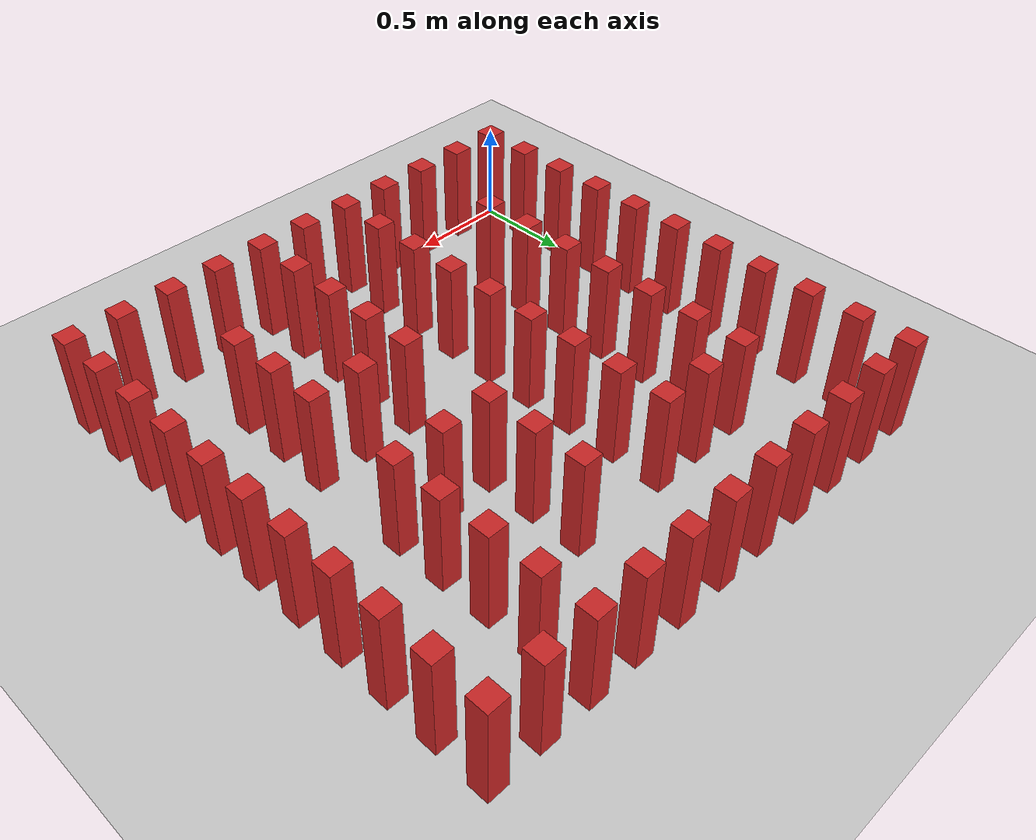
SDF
<sdf version="1.6">
 <world name="maze_random">
  <light name="sun" type="directional">
   <pose>0 0 10 0 0 0</pose>
   <diffuse>0.8 0.8 0.8 1</diffuse>
   <specular>0.2 0.2 0.2 1</specular>
   <attenuation>
    <range>1000</range>
    <constant>0.9</constant>
    <linear>0.01</linear>
    <quadratic>0.001</quadratic>
   </attenuation>
   <direction>-0.5 0.1 -0.9</direction>
  </light>
  <model name="ground_plane">
   <static>true</static>
   <link name="link">
    <collision name="collision">
     <geometry><plane><normal>0 0 1</normal><size>100 100</size></plane></geometry>
    </collision>
    <visual name="visual">
     <geometry><plane><normal>0 0 1</normal><size>100 100</size></plane></geometry>
     <material>
      <ambient>0.8 0.8 0.8 1</ambient>
      <diffuse>0.8 0.8 0.8 1</diffuse>
      <specular>0.8 0.8 0.8 1</specular>
     </material>
    </visual>
   </link>
  </model>
  <model name="maze_wall_0">
   <static>true</static>
   <link name="link">
    <collision name="collision"><geometry><box><size>0.1 0.1 0.5</size></box></geometry></collision>
    <visual name="visual">
     <geometry><box><size>0.1 0.1 0.5</size></box></geometry>
     <material>
      <script><uri>file://media/materials/scripts/gazebo.material</uri><name>Gazebo/Red</name></script>
     </material>
    </visual>
   </link>
   <pose>0.0 0.0 0.25 0 0 0</pose>
  </model>
  <model name="maze_wall_1">
   <static>true</static>
   <link name="link">
    <collision name="collision"><geometry><box><size>0.1 0.1 0.5</size></box></geometry></collision>
    <visual name="visual">
     <geometry><box><size>0.1 0.1 0.5</size></box></geometry>
     <material>
      <script><uri>file://media/materials/scripts/gazebo.material</uri><name>Gazebo/Red</name></script>
     </material>
    </visual>
   </link>
   <pose>0.25 0.0 0.25 0 0 0</pose>
  </model>
  <model name="maze_wall_2">
   <static>true</static>
   <link name="link">
    <collision name="collision"><geometry><box><size>0.1 0.1 0.5</size></box></geometry></collision>
    <visual name="visual">
     <geometry><box><size>0.1 0.1 0.5</size></box></geometry>
     <material>
      <script><uri>file://media/materials/scripts/gazebo.material</uri><name>Gazebo/Red</name></script>
     </material>
    </visual>
   </link>
   <pose>0.5 0.0 0.25 0 0 0</pose>
  </model>
  <model name="maze_wall_3">
   <static>true</static>
   <link name="link">
    <collision name="collision"><geometry><box><size>0.1 0.1 0.5</size></box></geometry></collision>
    <visual name="visual">
     <geometry><box><size>0.1 0.1 0.5</size></box></geometry>
     <material>
      <script><uri>file://media/materials/scripts/gazebo.material</uri><name>Gazebo/Red</name></script>
     </material>
    </visual>
   </link>
   <pose>0.75 0.0 0.25 0 0 0</pose>
  </model>
  <model name="maze_wall_4">
   <static>true</static>
   <link name="link">
    <collision name="collision"><geometry><box><size>0.1 0.1 0.5</size></box></geometry></collision>
    <visual name="visual">
     <geometry><box><size>0.1 0.1 0.5</size></box></geometry>
     <material>
      <script><uri>file://media/materials/scripts/gazebo.material</uri><name>Gazebo/Red</name></script>
     </material>
    </visual>
   </link>
   <pose>1.0 0.0 0.25 0 0 0</pose>
  </model>
  <model name="maze_wall_5">
   <static>true</static>
   <link name="link">
    <collision name="collision"><geometry><box><size>0.1 0.1 0.5</size></box></geometry></collision>
    <visual name="visual">
     <geometry><box><size>0.1 0.1 0.5</size></box></geometry>
     <material>
      <script><uri>file://media/materials/scripts/gazebo.material</uri><name>Gazebo/Red</name></script>
     </material>
    </visual>
   </link>
   <pose>1.25 0.0 0.25 0 0 0</pose>
  </model>
  <model name="maze_wall_6">
   <static>true</static>
   <link name="link">
    <collision name="collision"><geometry><box><size>0.1 0.1 0.5</size></box></geometry></collision>
    <visual name="visual">
     <geometry><box><size>0.1 0.1 0.5</size></box></geometry>
     <material>
      <script><uri>file://media/materials/scripts/gazebo.material</uri><name>Gazebo/Red</name></script>
     </material>
    </visual>
   </link>
   <pose>1.5 0.0 0.25 0 0 0</pose>
  </model>
  <model name="maze_wall_7">
   <static>true</static>
   <link name="link">
    <collision name="collision"><geometry><box><size>0.1 0.1 0.5</size></box></geometry></collision>
    <visual name="visual">
     <geometry><box><size>0.1 0.1 0.5</size></box></geometry>
     <material>
      <script><uri>file://media/materials/scripts/gazebo.material</uri><name>Gazebo/Red</name></script>
     </material>
    </visual>
   </link>
   <pose>1.75 0.0 0.25 0 0 0</pose>
  </model>
  <model name="maze_wall_8">
   <static>true</static>
   <link name="link">
    <collision name="collision"><geometry><box><size>0.1 0.1 0.5</size></box></geometry></collision>
    <visual name="visual">
     <geometry><box><size>0.1 0.1 0.5</size></box></geometry>
     <material>
      <script><uri>file://media/materials/scripts/gazebo.material</uri><name>Gazebo/Red</name></script>
     </material>
    </visual>
   </link>
   <pose>2.0 0.0 0.25 0 0 0</pose>
  </model>
  <model name="maze_wall_9">
   <static>true</static>
   <link name="link">
    <collision name="collision"><geometry><box><size>0.1 0.1 0.5</size></box></geometry></collision>
    <visual name="visual">
     <geometry><box><size>0.1 0.1 0.5</size></box></geometry>
     <material>
      <script><uri>file://media/materials/scripts/gazebo.material</uri><name>Gazebo/Red</name></script>
     </material>
    </visual>
   </link>
   <pose>2.25 0.0 0.25 0 0 0</pose>
  </model>
  <model name="maze_wall_10">
   <static>true</static>
   <link name="link">
    <collision name="collision"><geometry><box><size>0.1 0.1 0.5</size></box></geometry></collision>
    <visual name="visual">
     <geometry><box><size>0.1 0.1 0.5</size></box></geometry>
     <material>
      <script><uri>file://media/materials/scripts/gazebo.material</uri><name>Gazebo/Red</name></script>
     </material>
    </visual>
   </link>
   <pose>2.5 0.0 0.25 0 0 0</pose>
  </model>
  <model name="maze_wall_11">
   <static>true</static>
   <link name="link">
    <collision name="collision"><geometry><box><size>0.1 0.1 0.5</size></box></geometry></collision>
    <visual name="visual">
     <geometry><box><size>0.1 0.1 0.5</size></box></geometry>
     <material>
      <script><uri>file://media/materials/scripts/gazebo.material</uri><name>Gazebo/Red</name></script>
     </material>
    </visual>
   </link>
   <pose>0.0 0.25 0.25 0 0 0</pose>
  </model>
  <model name="maze_wall_12">
   <static>true</static>
   <link name="link">
    <collision name="collision"><geometry><box><size>0.1 0.1 0.5</size></box></geometry></collision>
    <visual name="visual">
     <geometry><box><size>0.1 0.1 0.5</size></box></geometry>
     <material>
      <script><uri>file://media/materials/scripts/gazebo.material</uri><name>Gazebo/Red</name></script>
     </material>
    </visual>
   </link>
   <pose>1.0 0.25 0.25 0 0 0</pose>
  </model>
  <model name="maze_wall_13">
   <static>true</static>
   <link name="link">
    <collision name="collision"><geometry><box><size>0.1 0.1 0.5</size></box></geometry></collision>
    <visual name="visual">
     <geometry><box><size>0.1 0.1 0.5</size></box></geometry>
     <material>
      <script><uri>file://media/materials/scripts/gazebo.material</uri><name>Gazebo/Red</name></script>
     </material>
    </visual>
   </link>
   <pose>1.5 0.25 0.25 0 0 0</pose>
  </model>
  <model name="maze_wall_14">
   <static>true</static>
   <link name="link">
    <collision name="collision"><geometry><box><size>0.1 0.1 0.5</size></box></geometry></collision>
    <visual name="visual">
     <geometry><box><size>0.1 0.1 0.5</size></box></geometry>
     <material>
      <script><uri>file://media/materials/scripts/gazebo.material</uri><name>Gazebo/Red</name></script>
     </material>
    </visual>
   </link>
   <pose>2.5 0.25 0.25 0 0 0</pose>
  </model>
  <model name="maze_wall_15">
   <static>true</static>
   <link name="link">
    <collision name="collision"><geometry><box><size>0.1 0.1 0.5</size></box></geometry></collision>
    <visual name="visual">
     <geometry><box><size>0.1 0.1 0.5</size></box></geometry>
     <material>
      <script><uri>file://media/materials/scripts/gazebo.material</uri><name>Gazebo/Red</name></script>
     </material>
    </visual>
   </link>
   <pose>0.0 0.5 0.25 0 0 0</pose>
  </model>
  <model name="maze_wall_16">
   <static>true</static>
   <link name="link">
    <collision name="collision"><geometry><box><size>0.1 0.1 0.5</size></box></geometry></collision>
    <visual name="visual">
     <geometry><box><size>0.1 0.1 0.5</size></box></geometry>
     <material>
      <script><uri>file://media/materials/scripts/gazebo.material</uri><name>Gazebo/Red</name></script>
     </material>
    </visual>
   </link>
   <pose>0.5 0.5 0.25 0 0 0</pose>
  </model>
  <model name="maze_wall_17">
   <static>true</static>
   <link name="link">
    <collision name="collision"><geometry><box><size>0.1 0.1 0.5</size></box></geometry></collision>
    <visual name="visual">
     <geometry><box><size>0.1 0.1 0.5</size></box></geometry>
     <material>
      <script><uri>file://media/materials/scripts/gazebo.material</uri><name>Gazebo/Red</name></script>
     </material>
    </visual>
   </link>
   <pose>1.0 0.5 0.25 0 0 0</pose>
  </model>
  <model name="maze_wall_18">
   <static>true</static>
   <link name="link">
    <collision name="collision"><geometry><box><size>0.1 0.1 0.5</size></box></geometry></collision>
    <visual name="visual">
     <geometry><box><size>0.1 0.1 0.5</size></box></geometry>
     <material>
      <script><uri>file://media/materials/scripts/gazebo.material</uri><name>Gazebo/Red</name></script>
     </material>
    </visual>
   </link>
   <pose>1.5 0.5 0.25 0 0 0</pose>
  </model>
  <model name="maze_wall_19">
   <static>true</static>
   <link name="link">
    <collision name="collision"><geometry><box><size>0.1 0.1 0.5</size></box></geometry></collision>
    <visual name="visual">
     <geometry><box><size>0.1 0.1 0.5</size></box></geometry>
     <material>
      <script><uri>file://media/materials/scripts/gazebo.material</uri><name>Gazebo/Red</name></script>
     </material>
    </visual>
   </link>
   <pose>2.0 0.5 0.25 0 0 0</pose>
  </model>
  <model name="maze_wall_20">
   <static>true</static>
   <link name="link">
    <collision name="collision"><geometry><box><size>0.1 0.1 0.5</size></box></geometry></collision>
    <visual name="visual">
     <geometry><box><size>0.1 0.1 0.5</size></box></geometry>
     <material>
      <script><uri>file://media/materials/scripts/gazebo.material</uri><name>Gazebo/Red</name></script>
     </material>
    </visual>
   </link>
   <pose>2.5 0.5 0.25 0 0 0</pose>
  </model>
  <model name="maze_wall_21">
   <static>true</static>
   <link name="link">
    <collision name="collision"><geometry><box><size>0.1 0.1 0.5</size></box></geometry></collision>
    <visual name="visual">
     <geometry><box><size>0.1 0.1 0.5</size></box></geometry>
     <material>
      <script><uri>file://media/materials/scripts/gazebo.material</uri><name>Gazebo/Red</name></script>
     </material>
    </visual>
   </link>
   <pose>0.0 0.75 0.25 0 0 0</pose>
  </model>
  <model name="maze_wall_22">
   <static>true</static>
   <link name="link">
    <collision name="collision"><geometry><box><size>0.1 0.1 0.5</size></box></geometry></collision>
    <visual name="visual">
     <geometry><box><size>0.1 0.1 0.5</size></box></geometry>
     <material>
      <script><uri>file://media/materials/scripts/gazebo.material</uri><name>Gazebo/Red</name></script>
     </material>
    </visual>
   </link>
   <pose>0.5 0.75 0.25 0 0 0</pose>
  </model>
  <model name="maze_wall_23">
   <static>true</static>
   <link name="link">
    <collision name="collision"><geometry><box><size>0.1 0.1 0.5</size></box></geometry></collision>
    <visual name="visual">
     <geometry><box><size>0.1 0.1 0.5</size></box></geometry>
     <material>
      <script><uri>file://media/materials/scripts/gazebo.material</uri><name>Gazebo/Red</name></script>
     </material>
    </visual>
   </link>
   <pose>1.0 0.75 0.25 0 0 0</pose>
  </model>
  <model name="maze_wall_24">
   <static>true</static>
   <link name="link">
    <collision name="collision"><geometry><box><size>0.1 0.1 0.5</size></box></geometry></collision>
    <visual name="visual">
     <geometry><box><size>0.1 0.1 0.5</size></box></geometry>
     <material>
      <script><uri>file://media/materials/scripts/gazebo.material</uri><name>Gazebo/Red</name></script>
     </material>
    </visual>
   </link>
   <pose>1.5 0.75 0.25 0 0 0</pose>
  </model>
  <model name="maze_wall_25">
   <static>true</static>
   <link name="link">
    <collision name="collision"><geometry><box><size>0.1 0.1 0.5</size></box></geometry></collision>
    <visual name="visual">
     <geometry><box><size>0.1 0.1 0.5</size></box></geometry>
     <material>
      <script><uri>file://media/materials/scripts/gazebo.material</uri><name>Gazebo/Red</name></script>
     </material>
    </visual>
   </link>
   <pose>2.0 0.75 0.25 0 0 0</pose>
  </model>
  <model name="maze_wall_26">
   <static>true</static>
   <link name="link">
    <collision name="collision"><geometry><box><size>0.1 0.1 0.5</size></box></geometry></collision>
    <visual name="visual">
     <geometry><box><size>0.1 0.1 0.5</size></box></geometry>
     <material>
      <script><uri>file://media/materials/scripts/gazebo.material</uri><name>Gazebo/Red</name></script>
     </material>
    </visual>
   </link>
   <pose>2.5 0.75 0.25 0 0 0</pose>
  </model>
  <model name="maze_wall_27">
   <static>true</static>
   <link name="link">
    <collision name="collision"><geometry><box><size>0.1 0.1 0.5</size></box></geometry></collision>
    <visual name="visual">
     <geometry><box><size>0.1 0.1 0.5</size></box></geometry>
     <material>
      <script><uri>file://media/materials/scripts/gazebo.material</uri><name>Gazebo/Red</name></script>
     </material>
    </visual>
   </link>
   <pose>0.0 1.0 0.25 0 0 0</pose>
  </model>
  <model name="maze_wall_28">
   <static>true</static>
   <link name="link">
    <collision name="collision"><geometry><box><size>0.1 0.1 0.5</size></box></geometry></collision>
    <visual name="visual">
     <geometry><box><size>0.1 0.1 0.5</size></box></geometry>
     <material>
      <script><uri>file://media/materials/scripts/gazebo.material</uri><name>Gazebo/Red</name></script>
     </material>
    </visual>
   </link>
   <pose>0.5 1.0 0.25 0 0 0</pose>
  </model>
  <model name="maze_wall_29">
   <static>true</static>
   <link name="link">
    <collision name="collision"><geometry><box><size>0.1 0.1 0.5</size></box></geometry></collision>
    <visual name="visual">
     <geometry><box><size>0.1 0.1 0.5</size></box></geometry>
     <material>
      <script><uri>file://media/materials/scripts/gazebo.material</uri><name>Gazebo/Red</name></script>
     </material>
    </visual>
   </link>
   <pose>1.0 1.0 0.25 0 0 0</pose>
  </model>
  <model name="maze_wall_30">
   <static>true</static>
   <link name="link">
    <collision name="collision"><geometry><box><size>0.1 0.1 0.5</size></box></geometry></collision>
    <visual name="visual">
     <geometry><box><size>0.1 0.1 0.5</size></box></geometry>
     <material>
      <script><uri>file://media/materials/scripts/gazebo.material</uri><name>Gazebo/Red</name></script>
     </material>
    </visual>
   </link>
   <pose>1.5 1.0 0.25 0 0 0</pose>
  </model>
  <model name="maze_wall_31">
   <static>true</static>
   <link name="link">
    <collision name="collision"><geometry><box><size>0.1 0.1 0.5</size></box></geometry></collision>
    <visual name="visual">
     <geometry><box><size>0.1 0.1 0.5</size></box></geometry>
     <material>
      <script><uri>file://media/materials/scripts/gazebo.material</uri><name>Gazebo/Red</name></script>
     </material>
    </visual>
   </link>
   <pose>1.75 1.0 0.25 0 0 0</pose>
  </model>
  <model name="maze_wall_32">
   <static>true</static>
   <link name="link">
    <collision name="collision"><geometry><box><size>0.1 0.1 0.5</size></box></geometry></collision>
    <visual name="visual">
     <geometry><box><size>0.1 0.1 0.5</size></box></geometry>
     <material>
      <script><uri>file://media/materials/scripts/gazebo.material</uri><name>Gazebo/Red</name></script>
     </material>
    </visual>
   </link>
   <pose>2.0 1.0 0.25 0 0 0</pose>
  </model>
  <model name="maze_wall_33">
   <static>true</static>
   <link name="link">
    <collision name="collision"><geometry><box><size>0.1 0.1 0.5</size></box></geometry></collision>
    <visual name="visual">
     <geometry><box><size>0.1 0.1 0.5</size></box></geometry>
     <material>
      <script><uri>file://media/materials/scripts/gazebo.material</uri><name>Gazebo/Red</name></script>
     </material>
    </visual>
   </link>
   <pose>2.5 1.0 0.25 0 0 0</pose>
  </model>
  <model name="maze_wall_34">
   <static>true</static>
   <link name="link">
    <collision name="collision"><geometry><box><size>0.1 0.1 0.5</size></box></geometry></collision>
    <visual name="visual">
     <geometry><box><size>0.1 0.1 0.5</size></box></geometry>
     <material>
      <script><uri>file://media/materials/scripts/gazebo.material</uri><name>Gazebo/Red</name></script>
     </material>
    </visual>
   </link>
   <pose>0.0 1.25 0.25 0 0 0</pose>
  </model>
  <model name="maze_wall_35">
   <static>true</static>
   <link name="link">
    <collision name="collision"><geometry><box><size>0.1 0.1 0.5</size></box></geometry></collision>
    <visual name="visual">
     <geometry><box><size>0.1 0.1 0.5</size></box></geometry>
     <material>
      <script><uri>file://media/materials/scripts/gazebo.material</uri><name>Gazebo/Red</name></script>
     </material>
    </visual>
   </link>
   <pose>0.5 1.25 0.25 0 0 0</pose>
  </model>
  <model name="maze_wall_36">
   <static>true</static>
   <link name="link">
    <collision name="collision"><geometry><box><size>0.1 0.1 0.5</size></box></geometry></collision>
    <visual name="visual">
     <geometry><box><size>0.1 0.1 0.5</size></box></geometry>
     <material>
      <script><uri>file://media/materials/scripts/gazebo.material</uri><name>Gazebo/Red</name></script>
     </material>
    </visual>
   </link>
   <pose>1.0 1.25 0.25 0 0 0</pose>
  </model>
  <model name="maze_wall_37">
   <static>true</static>
   <link name="link">
    <collision name="collision"><geometry><box><size>0.1 0.1 0.5</size></box></geometry></collision>
    <visual name="visual">
     <geometry><box><size>0.1 0.1 0.5</size></box></geometry>
     <material>
      <script><uri>file://media/materials/scripts/gazebo.material</uri><name>Gazebo/Red</name></script>
     </material>
    </visual>
   </link>
   <pose>2.5 1.25 0.25 0 0 0</pose>
  </model>
  <model name="maze_wall_38">
   <static>true</static>
   <link name="link">
    <collision name="collision"><geometry><box><size>0.1 0.1 0.5</size></box></geometry></collision>
    <visual name="visual">
     <geometry><box><size>0.1 0.1 0.5</size></box></geometry>
     <material>
      <script><uri>file://media/materials/scripts/gazebo.material</uri><name>Gazebo/Red</name></script>
     </material>
    </visual>
   </link>
   <pose>0.0 1.5 0.25 0 0 0</pose>
  </model>
  <model name="maze_wall_39">
   <static>true</static>
   <link name="link">
    <collision name="collision"><geometry><box><size>0.1 0.1 0.5</size></box></geometry></collision>
    <visual name="visual">
     <geometry><box><size>0.1 0.1 0.5</size></box></geometry>
     <material>
      <script><uri>file://media/materials/scripts/gazebo.material</uri><name>Gazebo/Red</name></script>
     </material>
    </visual>
   </link>
   <pose>0.5 1.5 0.25 0 0 0</pose>
  </model>
  <model name="maze_wall_40">
   <static>true</static>
   <link name="link">
    <collision name="collision"><geometry><box><size>0.1 0.1 0.5</size></box></geometry></collision>
    <visual name="visual">
     <geometry><box><size>0.1 0.1 0.5</size></box></geometry>
     <material>
      <script><uri>file://media/materials/scripts/gazebo.material</uri><name>Gazebo/Red</name></script>
     </material>
    </visual>
   </link>
   <pose>1.0 1.5 0.25 0 0 0</pose>
  </model>
  <model name="maze_wall_41">
   <static>true</static>
   <link name="link">
    <collision name="collision"><geometry><box><size>0.1 0.1 0.5</size></box></geometry></collision>
    <visual name="visual">
     <geometry><box><size>0.1 0.1 0.5</size></box></geometry>
     <material>
      <script><uri>file://media/materials/scripts/gazebo.material</uri><name>Gazebo/Red</name></script>
     </material>
    </visual>
   </link>
   <pose>1.5 1.5 0.25 0 0 0</pose>
  </model>
  <model name="maze_wall_42">
   <static>true</static>
   <link name="link">
    <collision name="collision"><geometry><box><size>0.1 0.1 0.5</size></box></geometry></collision>
    <visual name="visual">
     <geometry><box><size>0.1 0.1 0.5</size></box></geometry>
     <material>
      <script><uri>file://media/materials/scripts/gazebo.material</uri><name>Gazebo/Red</name></script>
     </material>
    </visual>
   </link>
   <pose>1.75 1.5 0.25 0 0 0</pose>
  </model>
  <model name="maze_wall_43">
   <static>true</static>
   <link name="link">
    <collision name="collision"><geometry><box><size>0.1 0.1 0.5</size></box></geometry></collision>
    <visual name="visual">
     <geometry><box><size>0.1 0.1 0.5</size></box></geometry>
     <material>
      <script><uri>file://media/materials/scripts/gazebo.material</uri><name>Gazebo/Red</name></script>
     </material>
    </visual>
   </link>
   <pose>2.0 1.5 0.25 0 0 0</pose>
  </model>
  <model name="maze_wall_44">
   <static>true</static>
   <link name="link">
    <collision name="collision"><geometry><box><size>0.1 0.1 0.5</size></box></geometry></collision>
    <visual name="visual">
     <geometry><box><size>0.1 0.1 0.5</size></box></geometry>
     <material>
      <script><uri>file://media/materials/scripts/gazebo.material</uri><name>Gazebo/Red</name></script>
     </material>
    </visual>
   </link>
   <pose>2.5 1.5 0.25 0 0 0</pose>
  </model>
  <model name="maze_wall_45">
   <static>true</static>
   <link name="link">
    <collision name="collision"><geometry><box><size>0.1 0.1 0.5</size></box></geometry></collision>
    <visual name="visual">
     <geometry><box><size>0.1 0.1 0.5</size></box></geometry>
     <material>
      <script><uri>file://media/materials/scripts/gazebo.material</uri><name>Gazebo/Red</name></script>
     </material>
    </visual>
   </link>
   <pose>0.0 1.75 0.25 0 0 0</pose>
  </model>
  <model name="maze_wall_46">
   <static>true</static>
   <link name="link">
    <collision name="collision"><geometry><box><size>0.1 0.1 0.5</size></box></geometry></collision>
    <visual name="visual">
     <geometry><box><size>0.1 0.1 0.5</size></box></geometry>
     <material>
      <script><uri>file://media/materials/scripts/gazebo.material</uri><name>Gazebo/Red</name></script>
     </material>
    </visual>
   </link>
   <pose>0.5 1.75 0.25 0 0 0</pose>
  </model>
  <model name="maze_wall_47">
   <static>true</static>
   <link name="link">
    <collision name="collision"><geometry><box><size>0.1 0.1 0.5</size></box></geometry></collision>
    <visual name="visual">
     <geometry><box><size>0.1 0.1 0.5</size></box></geometry>
     <material>
      <script><uri>file://media/materials/scripts/gazebo.material</uri><name>Gazebo/Red</name></script>
     </material>
    </visual>
   </link>
   <pose>1.0 1.75 0.25 0 0 0</pose>
  </model>
  <model name="maze_wall_48">
   <static>true</static>
   <link name="link">
    <collision name="collision"><geometry><box><size>0.1 0.1 0.5</size></box></geometry></collision>
    <visual name="visual">
     <geometry><box><size>0.1 0.1 0.5</size></box></geometry>
     <material>
      <script><uri>file://media/materials/scripts/gazebo.material</uri><name>Gazebo/Red</name></script>
     </material>
    </visual>
   </link>
   <pose>1.5 1.75 0.25 0 0 0</pose>
  </model>
  <model name="maze_wall_49">
   <static>true</static>
   <link name="link">
    <collision name="collision"><geometry><box><size>0.1 0.1 0.5</size></box></geometry></collision>
    <visual name="visual">
     <geometry><box><size>0.1 0.1 0.5</size></box></geometry>
     <material>
      <script><uri>file://media/materials/scripts/gazebo.material</uri><name>Gazebo/Red</name></script>
     </material>
    </visual>
   </link>
   <pose>2.0 1.75 0.25 0 0 0</pose>
  </model>
  <model name="maze_wall_50">
   <static>true</static>
   <link name="link">
    <collision name="collision"><geometry><box><size>0.1 0.1 0.5</size></box></geometry></collision>
    <visual name="visual">
     <geometry><box><size>0.1 0.1 0.5</size></box></geometry>
     <material>
      <script><uri>file://media/materials/scripts/gazebo.material</uri><name>Gazebo/Red</name></script>
     </material>
    </visual>
   </link>
   <pose>2.5 1.75 0.25 0 0 0</pose>
  </model>
  <model name="maze_wall_51">
   <static>true</static>
   <link name="link">
    <collision name="collision"><geometry><box><size>0.1 0.1 0.5</size></box></geometry></collision>
    <visual name="visual">
     <geometry><box><size>0.1 0.1 0.5</size></box></geometry>
     <material>
      <script><uri>file://media/materials/scripts/gazebo.material</uri><name>Gazebo/Red</name></script>
     </material>
    </visual>
   </link>
   <pose>0.0 2.0 0.25 0 0 0</pose>
  </model>
  <model name="maze_wall_52">
   <static>true</static>
   <link name="link">
    <collision name="collision"><geometry><box><size>0.1 0.1 0.5</size></box></geometry></collision>
    <visual name="visual">
     <geometry><box><size>0.1 0.1 0.5</size></box></geometry>
     <material>
      <script><uri>file://media/materials/scripts/gazebo.material</uri><name>Gazebo/Red</name></script>
     </material>
    </visual>
   </link>
   <pose>0.5 2.0 0.25 0 0 0</pose>
  </model>
  <model name="maze_wall_53">
   <static>true</static>
   <link name="link">
    <collision name="collision"><geometry><box><size>0.1 0.1 0.5</size></box></geometry></collision>
    <visual name="visual">
     <geometry><box><size>0.1 0.1 0.5</size></box></geometry>
     <material>
      <script><uri>file://media/materials/scripts/gazebo.material</uri><name>Gazebo/Red</name></script>
     </material>
    </visual>
   </link>
   <pose>0.75 2.0 0.25 0 0 0</pose>
  </model>
  <model name="maze_wall_54">
   <static>true</static>
   <link name="link">
    <collision name="collision"><geometry><box><size>0.1 0.1 0.5</size></box></geometry></collision>
    <visual name="visual">
     <geometry><box><size>0.1 0.1 0.5</size></box></geometry>
     <material>
      <script><uri>file://media/materials/scripts/gazebo.material</uri><name>Gazebo/Red</name></script>
     </material>
    </visual>
   </link>
   <pose>1.0 2.0 0.25 0 0 0</pose>
  </model>
  <model name="maze_wall_55">
   <static>true</static>
   <link name="link">
    <collision name="collision"><geometry><box><size>0.1 0.1 0.5</size></box></geometry></collision>
    <visual name="visual">
     <geometry><box><size>0.1 0.1 0.5</size></box></geometry>
     <material>
      <script><uri>file://media/materials/scripts/gazebo.material</uri><name>Gazebo/Red</name></script>
     </material>
    </visual>
   </link>
   <pose>1.5 2.0 0.25 0 0 0</pose>
  </model>
  <model name="maze_wall_56">
   <static>true</static>
   <link name="link">
    <collision name="collision"><geometry><box><size>0.1 0.1 0.5</size></box></geometry></collision>
    <visual name="visual">
     <geometry><box><size>0.1 0.1 0.5</size></box></geometry>
     <material>
      <script><uri>file://media/materials/scripts/gazebo.material</uri><name>Gazebo/Red</name></script>
     </material>
    </visual>
   </link>
   <pose>2.0 2.0 0.25 0 0 0</pose>
  </model>
  <model name="maze_wall_57">
   <static>true</static>
   <link name="link">
    <collision name="collision"><geometry><box><size>0.1 0.1 0.5</size></box></geometry></collision>
    <visual name="visual">
     <geometry><box><size>0.1 0.1 0.5</size></box></geometry>
     <material>
      <script><uri>file://media/materials/scripts/gazebo.material</uri><name>Gazebo/Red</name></script>
     </material>
    </visual>
   </link>
   <pose>2.5 2.0 0.25 0 0 0</pose>
  </model>
  <model name="maze_wall_58">
   <static>true</static>
   <link name="link">
    <collision name="collision"><geometry><box><size>0.1 0.1 0.5</size></box></geometry></collision>
    <visual name="visual">
     <geometry><box><size>0.1 0.1 0.5</size></box></geometry>
     <material>
      <script><uri>file://media/materials/scripts/gazebo.material</uri><name>Gazebo/Red</name></script>
     </material>
    </visual>
   </link>
   <pose>0.0 2.25 0.25 0 0 0</pose>
  </model>
  <model name="maze_wall_59">
   <static>true</static>
   <link name="link">
    <collision name="collision"><geometry><box><size>0.1 0.1 0.5</size></box></geometry></collision>
    <visual name="visual">
     <geometry><box><size>0.1 0.1 0.5</size></box></geometry>
     <material>
      <script><uri>file://media/materials/scripts/gazebo.material</uri><name>Gazebo/Red</name></script>
     </material>
    </visual>
   </link>
   <pose>2.0 2.25 0.25 0 0 0</pose>
  </model>
  <model name="maze_wall_60">
   <static>true</static>
   <link name="link">
    <collision name="collision"><geometry><box><size>0.1 0.1 0.5</size></box></geometry></collision>
    <visual name="visual">
     <geometry><box><size>0.1 0.1 0.5</size></box></geometry>
     <material>
      <script><uri>file://media/materials/scripts/gazebo.material</uri><name>Gazebo/Red</name></script>
     </material>
    </visual>
   </link>
   <pose>2.5 2.25 0.25 0 0 0</pose>
  </model>
  <model name="maze_wall_61">
   <static>true</static>
   <link name="link">
    <collision name="collision"><geometry><box><size>0.1 0.1 0.5</size></box></geometry></collision>
    <visual name="visual">
     <geometry><box><size>0.1 0.1 0.5</size></box></geometry>
     <material>
      <script><uri>file://media/materials/scripts/gazebo.material</uri><name>Gazebo/Red</name></script>
     </material>
    </visual>
   </link>
   <pose>0.0 2.5 0.25 0 0 0</pose>
  </model>
  <model name="maze_wall_62">
   <static>true</static>
   <link name="link">
    <collision name="collision"><geometry><box><size>0.1 0.1 0.5</size></box></geometry></collision>
    <visual name="visual">
     <geometry><box><size>0.1 0.1 0.5</size></box></geometry>
     <material>
      <script><uri>file://media/materials/scripts/gazebo.material</uri><name>Gazebo/Red</name></script>
     </material>
    </visual>
   </link>
   <pose>0.25 2.5 0.25 0 0 0</pose>
  </model>
  <model name="maze_wall_63">
   <static>true</static>
   <link name="link">
    <collision name="collision"><geometry><box><size>0.1 0.1 0.5</size></box></geometry></collision>
    <visual name="visual">
     <geometry><box><size>0.1 0.1 0.5</size></box></geometry>
     <material>
      <script><uri>file://media/materials/scripts/gazebo.material</uri><name>Gazebo/Red</name></script>
     </material>
    </visual>
   </link>
   <pose>0.5 2.5 0.25 0 0 0</pose>
  </model>
  <model name="maze_wall_64">
   <static>true</static>
   <link name="link">
    <collision name="collision"><geometry><box><size>0.1 0.1 0.5</size></box></geometry></collision>
    <visual name="visual">
     <geometry><box><size>0.1 0.1 0.5</size></box></geometry>
     <material>
      <script><uri>file://media/materials/scripts/gazebo.material</uri><name>Gazebo/Red</name></script>
     </material>
    </visual>
   </link>
   <pose>0.75 2.5 0.25 0 0 0</pose>
  </model>
  <model name="maze_wall_65">
   <static>true</static>
   <link name="link">
    <collision name="collision"><geometry><box><size>0.1 0.1 0.5</size></box></geometry></collision>
    <visual name="visual">
     <geometry><box><size>0.1 0.1 0.5</size></box></geometry>
     <material>
      <script><uri>file://media/materials/scripts/gazebo.material</uri><name>Gazebo/Red</name></script>
     </material>
    </visual>
   </link>
   <pose>1.0 2.5 0.25 0 0 0</pose>
  </model>
  <model name="maze_wall_66">
   <static>true</static>
   <link name="link">
    <collision name="collision"><geometry><box><size>0.1 0.1 0.5</size></box></geometry></collision>
    <visual name="visual">
     <geometry><box><size>0.1 0.1 0.5</size></box></geometry>
     <material>
      <script><uri>file://media/materials/scripts/gazebo.material</uri><name>Gazebo/Red</name></script>
     </material>
    </visual>
   </link>
   <pose>1.25 2.5 0.25 0 0 0</pose>
  </model>
  <model name="maze_wall_67">
   <static>true</static>
   <link name="link">
    <collision name="collision"><geometry><box><size>0.1 0.1 0.5</size></box></geometry></collision>
    <visual name="visual">
     <geometry><box><size>0.1 0.1 0.5</size></box></geometry>
     <material>
      <script><uri>file://media/materials/scripts/gazebo.material</uri><name>Gazebo/Red</name></script>
     </material>
    </visual>
   </link>
   <pose>1.5 2.5 0.25 0 0 0</pose>
  </model>
  <model name="maze_wall_68">
   <static>true</static>
   <link name="link">
    <collision name="collision"><geometry><box><size>0.1 0.1 0.5</size></box></geometry></collision>
    <visual name="visual">
     <geometry><box><size>0.1 0.1 0.5</size></box></geometry>
     <material>
      <script><uri>file://media/materials/scripts/gazebo.material</uri><name>Gazebo/Red</name></script>
     </material>
    </visual>
   </link>
   <pose>1.75 2.5 0.25 0 0 0</pose>
  </model>
  <model name="maze_wall_69">
   <static>true</static>
   <link name="link">
    <collision name="collision"><geometry><box><size>0.1 0.1 0.5</size></box></geometry></collision>
    <visual name="visual">
     <geometry><box><size>0.1 0.1 0.5</size></box></geometry>
     <material>
      <script><uri>file://media/materials/scripts/gazebo.material</uri><name>Gazebo/Red</name></script>
     </material>
    </visual>
   </link>
   <pose>2.0 2.5 0.25 0 0 0</pose>
  </model>
  <model name="maze_wall_70">
   <static>true</static>
   <link name="link">
    <collision name="collision"><geometry><box><size>0.1 0.1 0.5</size></box></geometry></collision>
    <visual name="visual">
     <geometry><box><size>0.1 0.1 0.5</size></box></geometry>
     <material>
      <script><uri>file://media/materials/scripts/gazebo.material</uri><name>Gazebo/Red</name></script>
     </material>
    </visual>
   </link>
   <pose>2.25 2.5 0.25 0 0 0</pose>
  </model>
  <model name="maze_wall_71">
   <static>true</static>
   <link name="link">
    <collision name="collision"><geometry><box><size>0.1 0.1 0.5</size></box></geometry></collision>
    <visual name="visual">
     <geometry><box><size>0.1 0.1 0.5</size></box></geometry>
     <material>
      <script><uri>file://media/materials/scripts/gazebo.material</uri><name>Gazebo/Red</name></script>
     </material>
    </visual>
   </link>
   <pose>2.5 2.5 0.25 0 0 0</pose>
  </model>
 </world>
</sdf>
